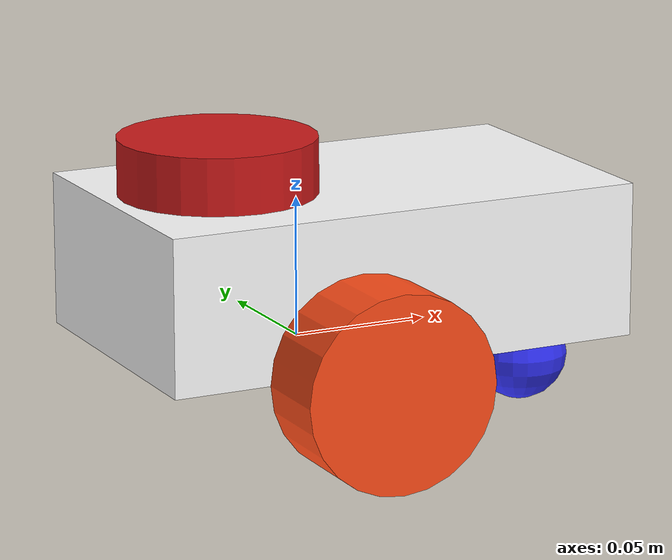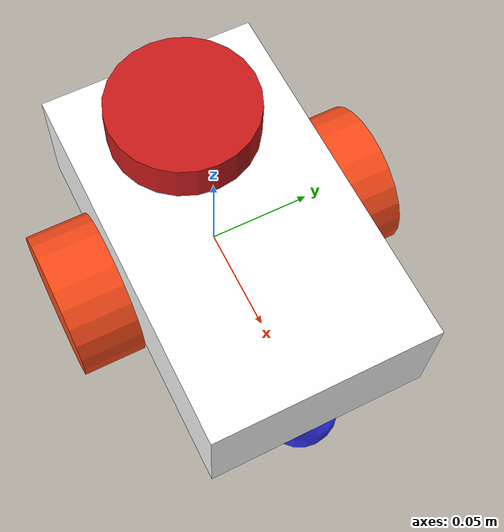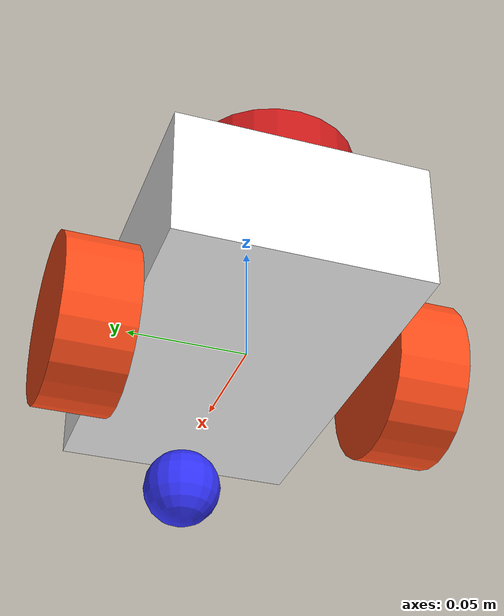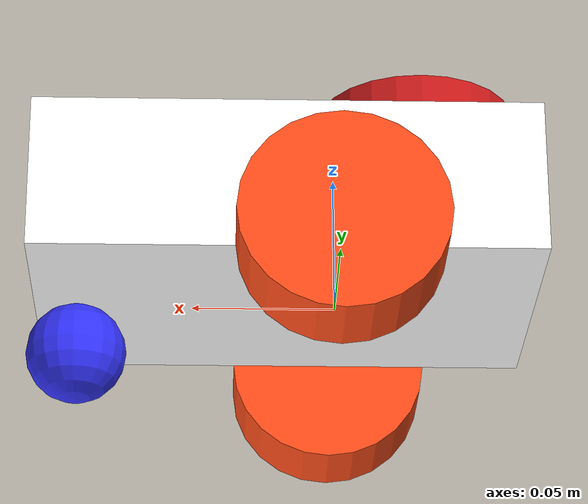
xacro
<?xml version="1.0"?>
<robot xmlns:xacro="http://www.ros.org/wiki/xacro" name="rover">

    <!--  Commented out, could not get ros2_cotnrol to work -->
    <xacro:include filename="rover.xacro"/> <!--Attach rover 3D specifications-->
    <xacro:include filename="gazebo_control.xacro"/> <!--Manual control for simulated robot-->
    <xacro:include filename="lidar.xacro"/> <!--Attach LiDAR Component-->
</robot>

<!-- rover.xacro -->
<!-- This file describes the robot's geometry, inertia's, materials (colours) so that Gazebo and RViz2
    can render and simulate the robot accurately -->
<?xml version="1.0"?>
<robot xmlns:xacro="http://www.ros.org/wiki/xacro">

    <!-- This will be the file we use to describe the 3-wheeled car in-class -->
    <xacro:include filename="general_include.xacro"/>

    <xacro:property name="chasis_x" value="0.175"/>
    <xacro:property name="chasis_y" value="0.105"/>
    <xacro:property name="chasis_z" value="0.055"/>

    <xacro:property name="wheel_diameter" value="0.035"/>
    <xacro:property name="wheel_width" value="0.03"/>
    <xacro:property name="front_wheel_diameter" value="0.0175"/>

    <!-- Base Link -->
    <link name="base_link">
    </link>

    <!-- Base to Chasis joint -->
    <joint name="chasis_joint" type="fixed">
        <parent link="base_link"/>
        <child link="chasis_link"/>
        <origin xyz ="-0.07 0 0"/>
    </joint>

    <!-- Chasis of the robot -->
    <link name="chasis_link">
        <visual>
            <origin xyz="${chasis_x/2} 0 ${chasis_z/2}" rpy="0 0 0"/>
            <geometry>
                <box size="${chasis_x} ${chasis_y} ${chasis_z}"/>
            </geometry>
            <material name="white"/>
        </visual>

        <collision>
            <origin xyz="${chasis_x/2} 0 ${chasis_z/2}" rpy="0 0 0"/>
            <geometry>
                <box size="${chasis_x} ${chasis_y} ${chasis_z}"/>
            </geometry>
        </collision>

        <xacro:inertial_box mass="1" x="${chasis_x}" y="${chasis_y}" z="${chasis_z}">
                <origin xyz="${chasis_x/2} 0 ${chasis_z/2}" rpy="0 0 0"/>
        </xacro:inertial_box>
    </link>

    <!-- Joint for Right wheel -->
    <joint name="right_wheel_joint" type="continuous">
        <parent link="chasis_link"/>
        <child link="right_wheel_link"/>
        <origin xyz="0.07 ${-(chasis_y/2 + wheel_width/2)} 0" rpy="${pi/2} 0 0"/>
        <axis xyz="0 0 -1"/>
    </joint>

    <!-- Right wheel link -->
    <link name="right_wheel_link">
        <visual>
            <origin xyz="0 0 0" rpy="0 0 0"/>
            <geometry>
                <cylinder length="${wheel_width}" radius="${wheel_diameter}"/>
            </geometry>
            <material name="orange"/>
        </visual>

        <collision>
            <origin xyz="0 0 0" rpy="0 0 0"/>
            <geometry>
                <cylinder length="${wheel_width}" radius="${wheel_diameter}"/>
            </geometry>
        </collision>

        <xacro:inertial_cylinder mass="0.08" length="${wheel_width}" radius="${wheel_diameter}">
            <origin xyz="0 0 0" rpy="0 0 0"/>
        </xacro:inertial_cylinder>
    </link>

    <!-- Joint for Left wheel -->
    <joint name="left_wheel_joint" type="continuous">
        <parent link="chasis_link"/>
        <child link="left_wheel_link"/>
        <origin xyz="0.07 ${(chasis_y/2 + wheel_width/2)} 0" rpy="${-(pi/2)} 0 0"/>
        <axis xyz="0 0 1"/>
    </joint>

    <!-- Left wheel link -->
    <link name="left_wheel_link">
        <visual>
            <origin xyz="0 0 0" rpy="0 0 0"/>
            <geometry>
                <cylinder length="${wheel_width}" radius="${wheel_diameter}"/>
            </geometry>
            <material name="orange"/>
        </visual>

        <collision>
            <origin xyz="0 0 0" rpy="0 0 0"/>
            <geometry>
                <cylinder length="${wheel_width}" radius="${wheel_diameter}"/>
            </geometry>
        </collision>

        <xacro:inertial_cylinder mass="0.08" length="${wheel_width}" radius="${wheel_diameter}">
            <origin xyz="0 0 0" rpy="0 0 0"/>
        </xacro:inertial_cylinder>
    </link>

    <!-- Joint for Front Wheel-->
    <joint name="wheel_front_joint" type="fixed">
        <origin xyz="0.16 0 ${-front_wheel_diameter}"/>
        <parent link="chasis_link"/>
        <child link="wheel_front_link"/>
    </joint>

    <!-- Link for Front wheel -->
    <link name="wheel_front_link">
        <visual>
            <origin xyz="0 0 0" rpy="0 0 0"/>
            <geometry>
                <sphere radius="${front_wheel_diameter}"/>
            </geometry>
            <material name="blue"/>
        </visual>

        <collision>
            <origin xyz="0 0 0" rpy="0 0 0"/>
            <geometry>
                <sphere radius="${front_wheel_diameter}"/>
            </geometry>
        </collision>

        <xacro:inertial_sphere mass="0.01" radius="${front_wheel_diameter}">
            <origin xyz="0 0 0" rpy="0 0 0"/>
        </xacro:inertial_sphere>
    </link>

    <xacro:include filename="example_gazebo.xacro" />
</robot>

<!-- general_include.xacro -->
<robot xmlns:xacro="http://www.ros.org/wiki/xacro">

    <!-- Specify some colours for use in any ROS2 project -->

    <material name="white">
        <color rgba="1 1 1 1"/>
    </material>

    <material name="orange">
        <color rgba="1 0.3 0.1 1"/>
    </material>

    <material name="blue">
        <color rgba="0.2 0.2 1 1"/>
    </material>

    <material name="red">
        <color rgba=" 0.8 0.1 0.1 1"/>
    </material>

    <!-- Specify some standard inertial calculations https://en.wikipedia.org/wiki/List_of_moments_of_inertia -->
    <!-- These make use of xacro's mathematical functionality -->

    <xacro:macro name="inertial_sphere" params="mass radius *origin">
        <inertial>
            <xacro:insert_block name="origin"/>
            <mass value="${mass}" />
            <inertia ixx="${(2/5) * mass * (radius*radius)}" ixy="0.0" ixz="0.0"
                    iyy="${(2/5) * mass * (radius*radius)}" iyz="0.0"
                    izz="${(2/5) * mass * (radius*radius)}" />
        </inertial>
    </xacro:macro>

    <xacro:macro name="inertial_box" params="mass x y z *origin">
        <inertial>
            <xacro:insert_block name="origin"/>
            <mass value="${mass}" />
            <inertia ixx="${(1/12) * mass * (y*y+z*z)}" ixy="0.0" ixz="0.0"
                    iyy="${(1/12) * mass * (x*x+z*z)}" iyz="0.0"
                    izz="${(1/12) * mass * (x*x+y*y)}" />
        </inertial>
    </xacro:macro>

    <xacro:macro name="inertial_cylinder" params="mass length radius *origin">
        <inertial>
            <xacro:insert_block name="origin"/>
            <mass value="${mass}" />
            <inertia ixx="${(1/12) * mass * (3*radius*radius + length*length)}" ixy="0.0" ixz="0.0"
                    iyy="${(1/12) * mass * (3*radius*radius + length*length)}" iyz="0.0"
                    izz="${(1/2) * mass * (radius*radius)}" />
        </inertial>
    </xacro:macro>

</robot>

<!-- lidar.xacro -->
<!-- Here we create the 3D model for the LiDAR to attach to the digital twin of our robot.
We setup the behaviour of the LiDAR e.g. scan range, samples per rev -->
<?xml version="1.0"?>
<robot xmlns:xacro="http://www.ros.org/wiki/xacro">
    <joint name="lidar_joint" type="fixed">
        <parent link="chasis_link"/>
        <child link="lidar_frame"/>
        <origin xyz="0.04 0 0.065" rpy="0 0 0" />
    </joint>

    <link name="lidar_frame">
        <visual>
            <geometry>
                <cylinder length="0.02" radius="0.035"/>
            </geometry>
            <material name="red"/>
        </visual>

        <collision>
            <origin xyz="0 0 0" rpy="0 0 0"/>
            <geometry>
                <cylinder length="0.02" radius="0.035"/>
            </geometry>
        </collision>

        <xacro:inertial_cylinder mass="0.08" length="${wheel_width}" radius="${wheel_diameter}">
            <origin xyz="0 0 0" rpy="0 0 0"/>
        </xacro:inertial_cylinder>
    </link>

    <gazebo reference="lidar_frame">
        <material>Gazebo/Red</material>

        <sensor name="lidar" type="ray">
            <pose> 0 0 0 0 0 0 </pose>
            <visualize> true </visualize>
            <update_rate>10</update_rate>
            <ray>
                <scan>
                    <horizontal>
                        <samples> 360 </samples>
                        <resolution> 1 </resolution>
                        <min_angle>-3.14</min_angle>
                        <max_angle>3.14</max_angle>
                    </horizontal>
                </scan>
                <range>
                    <min>0.3</min>
                    <max>12</max>
                    <resolution> 1</resolution>
                </range>
            </ray>
            <plugin name="laser_controller" filename="libgazebo_ros_ray_sensor.so">
                <ros>
                    <argument> ~/out:=scan </argument>
                </ros>
                <output_type> sensor_msgs/LaserScan </output_type>
                <frame_name> lidar_frame </frame_name>
            </plugin>
        </sensor>
    </gazebo>
</robot>
